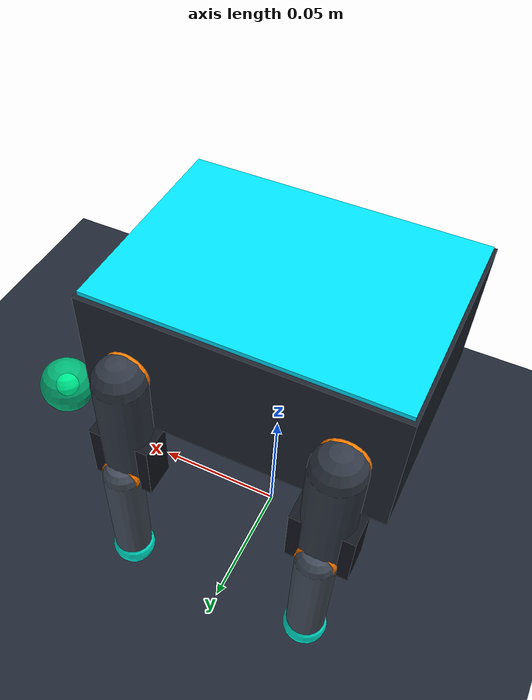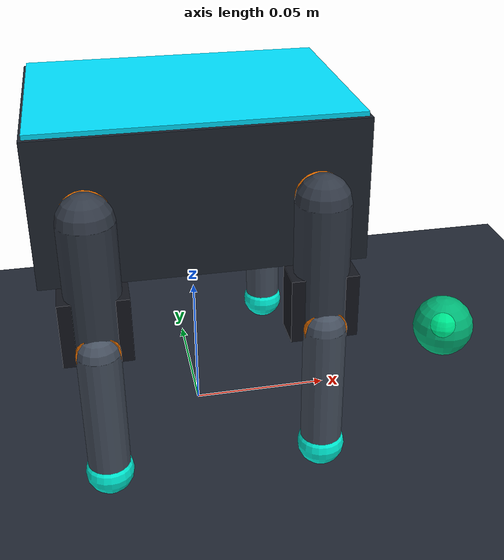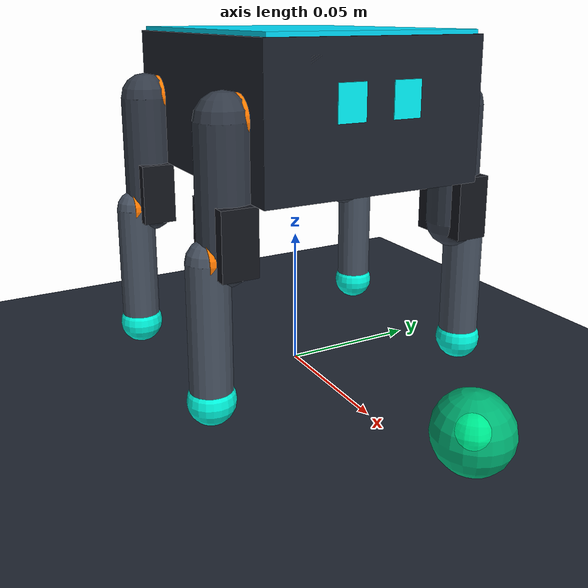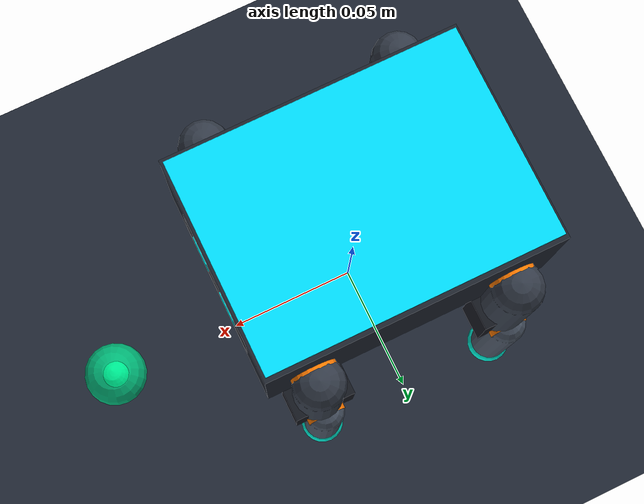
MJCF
<mujoco model="sesame_robot">
  <compiler angle="radian" coordinate="local" inertiafromgeom="true"/>

  <option timestep="0.002" gravity="0 0 -9.81" iterations="50" solver="Newton" cone="elliptic" integrator="implicitfast"/>

  <visual>
    <headlight ambient="0.60 0.60 0.65" diffuse="0.95 0.95 0.98" specular="0.4 0.4 0.4"/>
    <rgba haze="0.06 0.08 0.12 1"/>
    <global offwidth="1920" offheight="1080"/>
    <quality shadowsize="4096"/>
  </visual>

  <default>
    <joint damping="0.08" armature="0.005" frictionloss="0.005"/>
    <geom contype="1" conaffinity="1" condim="4" friction="0.85 0.01 0.001" margin="0.0005"/>
    <position ctrllimited="true" forcelimited="true" forcerange="-5.0 5.0" kp="50.0" kv="2.0"/>

    <default class="visual_geom">
      <geom contype="0" conaffinity="0" group="1"/>
    </default>

    <default class="collision_geom">
      <geom contype="1" conaffinity="1" group="0"/>
    </default>

    <default class="foot_geom">
      <geom type="sphere" size="0.008" condim="4" friction="0.95 0.015 0.002" solref="0.01 1" solimp="0.9 0.95 0.001"/>
    </default>
  </default>

  <asset>
    <!-- Studio Textures -->
    <texture type="skybox" builtin="gradient" rgb1="0.18 0.22 0.30" rgb2="0.06 0.08 0.12" width="512" height="512"/>
    <texture name="grid_tex" type="2d" builtin="checker" width="512" height="512" rgb1="0.10 0.12 0.16" rgb2="0.15 0.18 0.24"/>
    <material name="grid_mat" texture="grid_tex" texrepeat="25 25" reflectance="0.18" roughness="0.5"/>

    <!-- Authentic Robot Materials -->
    <material name="chassis_mat" rgba="0.12 0.14 0.18 1.0" roughness="0.35" specular="0.7"/>
    <material name="cyan_shell_mat" rgba="0.0 0.88 1.0 1.0" roughness="0.15" specular="0.95"/>
    <material name="oled_face_mat" rgba="0.0 0.98 1.0 1.0" emission="1.0"/>
    <material name="oled_glass_mat" rgba="0.02 0.03 0.05 1.0" roughness="0.05" specular="1.0"/>
    <material name="femur_mat" rgba="0.20 0.23 0.28 1.0" roughness="0.3" specular="0.5"/>
    <material name="tibia_mat" rgba="0.28 0.32 0.38 1.0" roughness="0.25" specular="0.6"/>
    <material name="servo_mat" rgba="0.08 0.09 0.12 1.0" roughness="0.4" specular="0.3"/>
    <material name="servo_horn_mat" rgba="1.0 0.48 0.0 1.0" roughness="0.2" specular="0.85"/>
    <material name="foot_tip_mat" rgba="0.0 0.98 0.88 1.0" roughness="0.6" specular="0.4" emission="0.5"/>
  </asset>

  <worldbody>
    <!-- Studio Lighting Rig -->
    <light directional="true" pos="1.5 -1.5 4.0" dir="-0.3 0.3 -1" diffuse="1.0 1.0 1.0" specular="0.5 0.5 0.5" castshadow="true"/>
    <light directional="true" pos="-2 2 3.5" dir="0.4 -0.4 -0.8" diffuse="0.6 0.65 0.75" specular="0.2 0.2 0.2"/>
    <light pos="0 0 1.8" dir="0 0 -1" diffuse="0.5 0.55 0.65" mode="trackcom"/>

    <!-- Floor Plane -->
    <geom name="floor" type="plane" pos="0 0 0" size="15 15 0.1" material="grid_mat" condim="4"/>

    <!-- Target Marker for Reaching RL Tasks -->
    <body name="target_marker" pos="0.10 0.0 0.02" mocap="true">
      <geom name="target_geom" type="sphere" size="0.012" rgba="0.0 0.95 0.6 0.75" contype="0" conaffinity="0"/>
      <site name="target_site" size="0.005" rgba="0 1 0.6 1"/>
    </body>

    <!-- Sesame Quadruped Robot Root Body -->
    <body name="base_link" pos="0 0 0.10">
      <freejoint name="root"/>

      <!-- Physics Collision Box (Length=105mm, Width=78mm, Height=48mm) -->
      <geom name="chassis_col" class="collision_geom" type="box" size="0.0525 0.039 0.024" mass="0.210" material="chassis_mat"/>

      <!-- Sleek Sesame Main Chassis Visual Geometry -->
      <geom name="chassis_main_vis" class="visual_geom" type="box" size="0.051 0.037 0.023" material="chassis_mat"/>
      <geom name="chassis_top_shell" class="visual_geom" type="box" pos="0 0 0.0235" size="0.0515 0.0375 0.002" material="cyan_shell_mat"/>
      <geom name="chassis_bottom_plate" class="visual_geom" type="box" pos="0 0 -0.0235" size="0.048 0.035 0.0015" material="chassis_mat"/>

      <!-- Side Accent Stripes -->
      <geom name="chassis_stripe_l" class="visual_geom" type="box" pos="0 0.0375 0.010" size="0.045 0.001 0.003" material="cyan_shell_mat"/>
      <geom name="chassis_stripe_r" class="visual_geom" type="box" pos="0 -0.0375 0.010" size="0.045 0.001 0.003" material="cyan_shell_mat"/>

      <!-- Glowing OLED Screen Face (Animated Eyes) -->
      <geom name="oled_glass_vis" class="visual_geom" type="box" pos="0.0515 0 0.004" size="0.001 0.024 0.015" material="oled_glass_mat"/>
      <geom name="oled_eye_left" class="visual_geom" type="box" pos="0.0522 0.010 0.005" size="0.0006 0.005 0.006" material="oled_face_mat"/>
      <geom name="oled_eye_right" class="visual_geom" type="box" pos="0.0522 -0.010 0.005" size="0.0006 0.005 0.006" material="oled_face_mat"/>

      <!-- 4 Onboard Hip MG90S Servos Enclosure -->
      <geom name="fl_hip_servo" class="visual_geom" type="box" pos="0.036 0.032 0" size="0.011 0.006 0.011" material="servo_mat"/>
      <geom name="fr_hip_servo" class="visual_geom" type="box" pos="0.036 -0.032 0" size="0.011 0.006 0.011" material="servo_mat"/>
      <geom name="rl_hip_servo" class="visual_geom" type="box" pos="-0.036 0.032 0" size="0.011 0.006 0.011" material="servo_mat"/>
      <geom name="rr_hip_servo" class="visual_geom" type="box" pos="-0.036 -0.032 0" size="0.011 0.006 0.011" material="servo_mat"/>

      <!-- Center IMU Site -->
      <site name="imu_site" pos="0 0 0" size="0.005" rgba="0 1 0 1"/>

      <!-- LEG 1: FRONT LEFT (FL) - Servo L1 (Hip) & Servo L3 (Knee)     -->
      <body name="fl_femur" pos="0.036 0.039 0.0">
        <!-- Hip Joint (Servo L1): Sagittal Pitch Axis [0, 1, 0] -->
        <joint name="fl_hip_joint" type="hinge" pos="0 0 0" axis="0 1 0" range="0.0 2.35619" ref="1.57079"/>

        <!-- Servo Horn Bracket & Femur Link -->
        <geom name="fl_femur_col" class="collision_geom" type="capsule" fromto="0 0.005 0 0 0.005 -0.042" size="0.009" mass="0.022" material="femur_mat"/>
        <geom name="fl_hip_horn_vis" class="visual_geom" type="cylinder" pos="0 0.001 0" euler="1.5708 0 0" size="0.008 0.002" material="servo_horn_mat"/>
        <geom name="fl_femur_vis" class="visual_geom" type="capsule" fromto="0 0.005 0 0 0.005 -0.042" size="0.0075" material="femur_mat"/>
        <geom name="fl_knee_servo_vis" class="visual_geom" type="box" pos="0 0.005 -0.035" size="0.011 0.006 0.011" material="servo_mat"/>
        <geom name="fl_knee_horn_vis" class="visual_geom" type="cylinder" pos="0 0.011 -0.042" euler="1.5708 0 0" size="0.007 0.002" material="servo_horn_mat"/>

        <!-- Knee Assembly (Servo L3): Tibia + Foot -->
        <body name="fl_tibia" pos="0 0.011 -0.042">
          <!-- Knee Joint (Servo L3): Sagittal Pitch Axis [0, 1, 0] -->
          <joint name="fl_knee_joint" type="hinge" pos="0 0 0" axis="0 1 0" range="0.0 3.14159" ref="1.57079"/>

          <geom name="fl_tibia_col" class="collision_geom" type="capsule" fromto="0 0 0 0 0 -0.046" size="0.007" mass="0.008" material="tibia_mat"/>
          <geom name="fl_tibia_vis" class="visual_geom" type="capsule" fromto="0 0 0 0 0 -0.046" size="0.006" material="tibia_mat"/>

          <!-- Foot Contact Tip -->
          <geom name="fl_foot_geom" class="foot_geom" pos="0 0 -0.046" material="foot_tip_mat"/>
          <site name="fl_foot" pos="0 0 -0.046" size="0.004" rgba="0 0.95 1 1"/>
        </body>
      </body>

      <!-- LEG 2: FRONT RIGHT (FR) - Servo R1 (Hip) & Servo R3 (Knee)    -->
      <body name="fr_femur" pos="0.036 -0.039 0.0">
        <!-- Hip Joint (Servo R1): Sagittal Pitch Axis [0, 1, 0] -->
        <joint name="fr_hip_joint" type="hinge" pos="0 0 0" axis="0 1 0" range="0.785398 3.14159" ref="1.57079"/>

        <geom name="fr_femur_col" class="collision_geom" type="capsule" fromto="0 -0.005 0 0 -0.005 -0.042" size="0.009" mass="0.022" material="femur_mat"/>
        <geom name="fr_hip_horn_vis" class="visual_geom" type="cylinder" pos="0 -0.001 0" euler="1.5708 0 0" size="0.008 0.002" material="servo_horn_mat"/>
        <geom name="fr_femur_vis" class="visual_geom" type="capsule" fromto="0 -0.005 0 0 -0.005 -0.042" size="0.0075" material="femur_mat"/>
        <geom name="fr_knee_servo_vis" class="visual_geom" type="box" pos="0 -0.005 -0.035" size="0.011 0.006 0.011" material="servo_mat"/>
        <geom name="fr_knee_horn_vis" class="visual_geom" type="cylinder" pos="0 -0.011 -0.042" euler="1.5708 0 0" size="0.007 0.002" material="servo_horn_mat"/>

        <body name="fr_tibia" pos="0 -0.011 -0.042">
          <!-- Knee Joint (Servo R3): Sagittal Pitch Axis [0, 1, 0] -->
          <joint name="fr_knee_joint" type="hinge" pos="0 0 0" axis="0 1 0" range="0.0 3.14159" ref="1.57079"/>

          <geom name="fr_tibia_col" class="collision_geom" type="capsule" fromto="0 0 0 0 0 -0.046" size="0.007" mass="0.008" material="tibia_mat"/>
          <geom name="fr_tibia_vis" class="visual_geom" type="capsule" fromto="0 0 0 0 0 -0.046" size="0.006" material="tibia_mat"/>

          <geom name="fr_foot_geom" class="foot_geom" pos="0 0 -0.046" material="foot_tip_mat"/>
          <site name="fr_foot" pos="0 0 -0.046" size="0.004" rgba="0 0.95 1 1"/>
        </body>
      </body>

      <!-- LEG 3: REAR LEFT (RL) - Servo L2 (Hip) & Servo L4 (Knee)      -->
      <body name="rl_femur" pos="-0.036 0.039 0.0">
        <!-- Hip Joint (Servo L2): Sagittal Pitch Axis [0, 1, 0] -->
        <joint name="rl_hip_joint" type="hinge" pos="0 0 0" axis="0 1 0" range="0.785398 3.14159" ref="1.57079"/>

        <geom name="rl_femur_col" class="collision_geom" type="capsule" fromto="0 0.005 0 0 0.005 -0.042" size="0.009" mass="0.022" material="femur_mat"/>
        <geom name="rl_hip_horn_vis" class="visual_geom" type="cylinder" pos="0 0.001 0" euler="1.5708 0 0" size="0.008 0.002" material="servo_horn_mat"/>
        <geom name="rl_femur_vis" class="visual_geom" type="capsule" fromto="0 0.005 0 0 0.005 -0.042" size="0.0075" material="femur_mat"/>
        <geom name="rl_knee_servo_vis" class="visual_geom" type="box" pos="0 0.005 -0.035" size="0.011 0.006 0.011" material="servo_mat"/>
        <geom name="rl_knee_horn_vis" class="visual_geom" type="cylinder" pos="0 0.011 -0.042" euler="1.5708 0 0" size="0.007 0.002" material="servo_horn_mat"/>

        <body name="rl_tibia" pos="0 0.011 -0.042">
          <!-- Knee Joint (Servo L4): Sagittal Pitch Axis [0, 1, 0] -->
          <joint name="rl_knee_joint" type="hinge" pos="0 0 0" axis="0 1 0" range="0.0 3.14159" ref="1.57079"/>

          <geom name="rl_tibia_col" class="collision_geom" type="capsule" fromto="0 0 0 0 0 -0.046" size="0.007" mass="0.008" material="tibia_mat"/>
          <geom name="rl_tibia_vis" class="visual_geom" type="capsule" fromto="0 0 0 0 0 -0.046" size="0.006" material="tibia_mat"/>

          <geom name="rl_foot_geom" class="foot_geom" pos="0 0 -0.046" material="foot_tip_mat"/>
          <site name="rl_foot" pos="0 0 -0.046" size="0.004" rgba="0 0.95 1 1"/>
        </body>
      </body>

      <!-- LEG 4: REAR RIGHT (RR) - Servo R2 (Hip) & Servo R4 (Knee)     -->
      <body name="rr_femur" pos="-0.036 -0.039 0.0">
        <!-- Hip Joint (Servo R2): Sagittal Pitch Axis [0, 1, 0] -->
        <joint name="rr_hip_joint" type="hinge" pos="0 0 0" axis="0 1 0" range="0.0 2.35619" ref="1.57079"/>

        <geom name="rr_femur_col" class="collision_geom" type="capsule" fromto="0 -0.005 0 0 -0.005 -0.042" size="0.009" mass="0.022" material="femur_mat"/>
        <geom name="rr_hip_horn_vis" class="visual_geom" type="cylinder" pos="0 -0.001 0" euler="1.5708 0 0" size="0.008 0.002" material="servo_horn_mat"/>
        <geom name="rr_femur_vis" class="visual_geom" type="capsule" fromto="0 -0.005 0 0 -0.005 -0.042" size="0.0075" material="femur_mat"/>
        <geom name="rr_knee_servo_vis" class="visual_geom" type="box" pos="0 -0.005 -0.035" size="0.011 0.006 0.011" material="servo_mat"/>
        <geom name="rr_knee_horn_vis" class="visual_geom" type="cylinder" pos="0 -0.011 -0.042" euler="1.5708 0 0" size="0.007 0.002" material="servo_horn_mat"/>

        <body name="rr_tibia" pos="0 -0.011 -0.042">
          <!-- Knee Joint (Servo R4): Sagittal Pitch Axis [0, 1, 0] -->
          <joint name="rr_knee_joint" type="hinge" pos="0 0 0" axis="0 1 0" range="0.0 3.14159" ref="1.57079"/>

          <geom name="rr_tibia_col" class="collision_geom" type="capsule" fromto="0 0 0 0 0 -0.046" size="0.007" mass="0.008" material="tibia_mat"/>
          <geom name="rr_tibia_vis" class="visual_geom" type="capsule" fromto="0 0 0 0 0 -0.046" size="0.006" material="tibia_mat"/>

          <geom name="rr_foot_geom" class="foot_geom" pos="0 0 -0.046" material="foot_tip_mat"/>
          <site name="rr_foot" pos="0 0 -0.046" size="0.004" rgba="0 0.95 1 1"/>
        </body>
      </body>

    </body>
  </worldbody>

  <!-- ACTUATOR DEFINITIONS (8 Position-Controlled MG90S Servos)    -->
  <actuator>
    <position name="fl_hip_actuator" joint="fl_hip_joint" ctrlrange="0.0 2.35619" kp="50.0" kv="2.0" forcerange="-5.0 5.0"/>
    <position name="fl_knee_actuator" joint="fl_knee_joint" ctrlrange="0.0 3.14159" kp="50.0" kv="2.0" forcerange="-5.0 5.0"/>
    <position name="fr_hip_actuator" joint="fr_hip_joint" ctrlrange="0.785398 3.14159" kp="50.0" kv="2.0" forcerange="-5.0 5.0"/>
    <position name="fr_knee_actuator" joint="fr_knee_joint" ctrlrange="0.0 3.14159" kp="50.0" kv="2.0" forcerange="-5.0 5.0"/>
    <position name="rl_hip_actuator" joint="rl_hip_joint" ctrlrange="0.785398 3.14159" kp="50.0" kv="2.0" forcerange="-5.0 5.0"/>
    <position name="rl_knee_actuator" joint="rl_knee_joint" ctrlrange="0.0 3.14159" kp="50.0" kv="2.0" forcerange="-5.0 5.0"/>
    <position name="rr_hip_actuator" joint="rr_hip_joint" ctrlrange="0.0 2.35619" kp="50.0" kv="2.0" forcerange="-5.0 5.0"/>
    <position name="rr_knee_actuator" joint="rr_knee_joint" ctrlrange="0.0 3.14159" kp="50.0" kv="2.0" forcerange="-5.0 5.0"/>
  </actuator>

  <!-- SENSOR DEFINITIONS                                           -->
  <sensor>
    <touch name="fl_touch" site="fl_foot"/>
    <touch name="fr_touch" site="fr_foot"/>
    <touch name="rl_touch" site="rl_foot"/>
    <touch name="rr_touch" site="rr_foot"/>
    <accelerometer name="body_accel" site="imu_site"/>
    <gyro name="body_gyro" site="imu_site"/>
    <jointpos name="fl_hip_pos" joint="fl_hip_joint"/>
    <jointpos name="fl_knee_pos" joint="fl_knee_joint"/>
    <jointpos name="fr_hip_pos" joint="fr_hip_joint"/>
    <jointpos name="fr_knee_pos" joint="fr_knee_joint"/>
    <jointpos name="rl_hip_pos" joint="rl_hip_joint"/>
    <jointpos name="rl_knee_pos" joint="rl_knee_joint"/>
    <jointpos name="rr_hip_pos" joint="rr_hip_joint"/>
    <jointpos name="rr_knee_pos" joint="rr_knee_joint"/>
    <jointvel name="fl_hip_vel" joint="fl_hip_joint"/>
    <jointvel name="fl_knee_vel" joint="fl_knee_joint"/>
    <jointvel name="fr_hip_vel" joint="fr_hip_joint"/>
    <jointvel name="fr_knee_vel" joint="fr_knee_joint"/>
    <jointvel name="rl_hip_vel" joint="rl_hip_joint"/>
    <jointvel name="rl_knee_vel" joint="rl_knee_joint"/>
    <jointvel name="rr_hip_vel" joint="rr_hip_joint"/>
    <jointvel name="rr_knee_vel" joint="rr_knee_joint"/>
  </sensor>
</mujoco>
